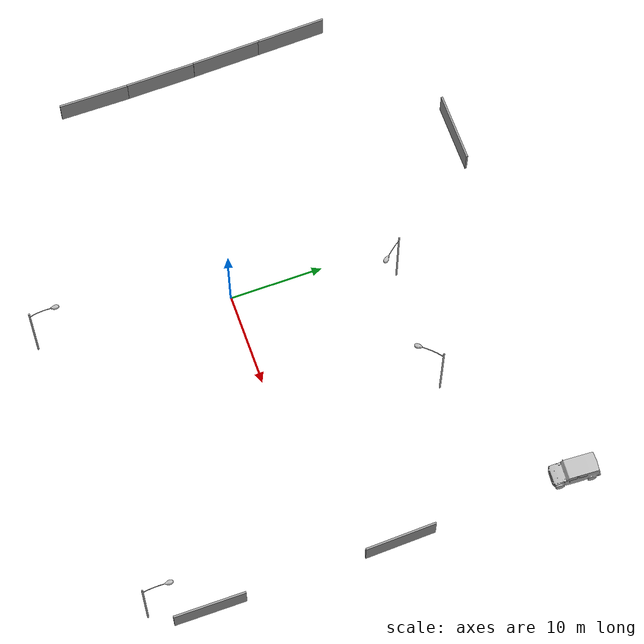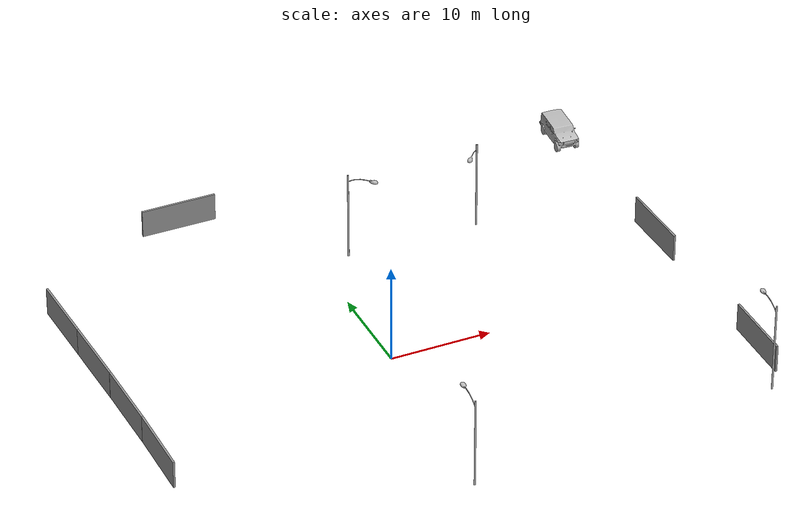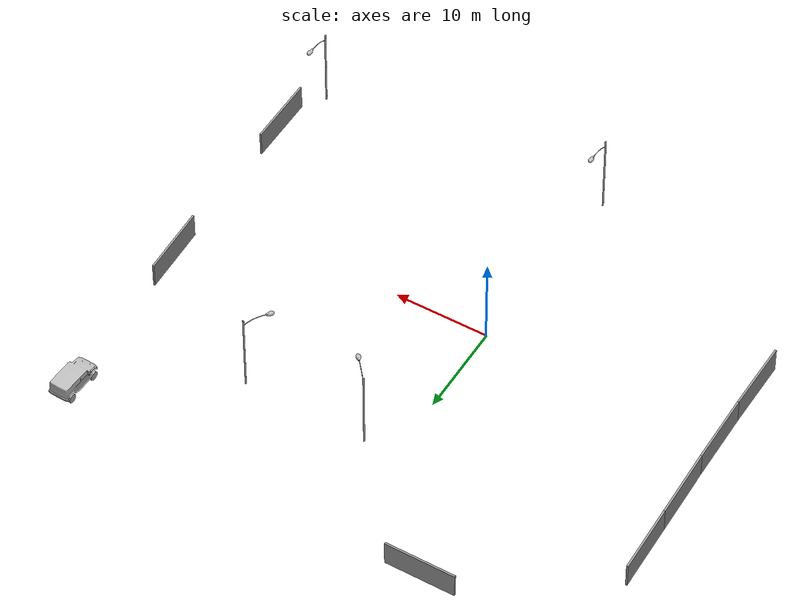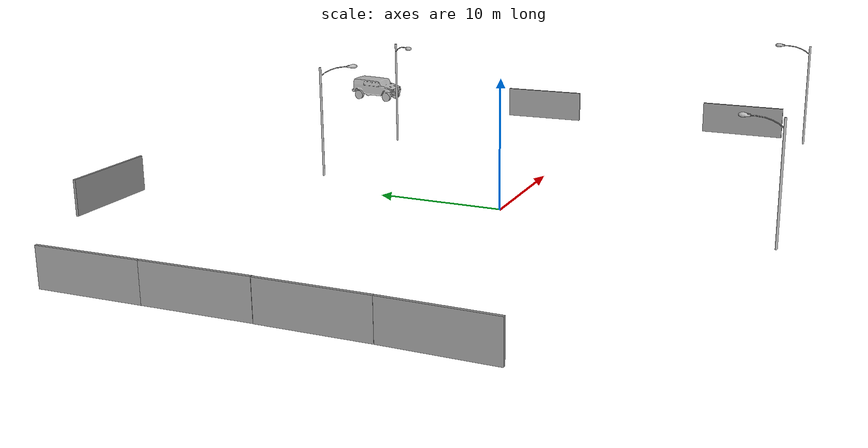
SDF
<sdf version="1.6">
 <world name="default">
  <light name="sun" type="directional">
   <pose>0 0 10 0 -0 0</pose>
   <diffuse>0.8 0.8 0.8 1</diffuse>
   <specular>0.2 0.2 0.2 1</specular>
   <attenuation>
    <range>1000</range>
    <constant>0.9</constant>
    <linear>0.01</linear>
    <quadratic>0.001</quadratic>
   </attenuation>
   <direction>-0.5 0.1 -0.9</direction>
  </light>
  <physics name="default_physics" default="0" type="ode">
   <ode>
    <solver>
     <type>quick</type>
     <iters>10</iters>
     <sor>1.3</sor>
     <use_dynamic_moi_rescaling>0</use_dynamic_moi_rescaling>
    </solver>
    <constraints>
     <cfm>0</cfm>
     <erp>0.2</erp>
     <contact_max_correcting_vel>100</contact_max_correcting_vel>
     <contact_surface_layer>0.001</contact_surface_layer>
    </constraints>
   </ode>
   <max_step_size>0.002</max_step_size>
   <real_time_factor>1</real_time_factor>
   <real_time_update_rate>500</real_time_update_rate>
  </physics>
  <gravity>0 0 -9.8066</gravity>
  <magnetic_field>6e-06 2.3e-05 -4.2e-05</magnetic_field>
  <atmosphere type="adiabatic"/>
  <scene><ambient>0.4 0.4 0.4 1</ambient><background>0.7 0.7 0.7 1</background><shadows>1</shadows></scene>
  <spherical_coordinates>
   <surface_model>EARTH_WGS84</surface_model>
   <latitude_deg>0</latitude_deg>
   <longitude_deg>0</longitude_deg>
   <elevation>0</elevation>
   <heading_deg>0</heading_deg>
  </spherical_coordinates>
  <model name="grey_wall_clone">
   <static>1</static>
   <link name="link">
    <pose>0 0 1.4 0 -0 0</pose>
    <collision name="collision"><geometry><box><size>7.5 0.2 2.8</size></box></geometry></collision>
    <visual name="visual">
     <cast_shadows>0</cast_shadows>
     <geometry><box><size>7.5 0.2 2.8</size></box></geometry>
     <material>
      <script>
       <uri>model://grey_wall/materials/scripts</uri>
       <uri>model://grey_wall/materials/textures</uri>
       <name>vrc/grey_wall</name>
      </script>
     </material>
    </visual>
   </link>
   <pose>-9.61178 28.3547 0 0 -0 0</pose>
  </model>
  <model name="Lamp Post">
   <static>1</static>
   <link name="link">
    <collision name="collision">
     <geometry><mesh><uri>model://lamp_post/meshes/lamp_post.dae</uri><scale>3 3 3</scale></mesh></geometry>
    </collision>
    <visual name="visual">
     <geometry><mesh><uri>model://lamp_post/meshes/lamp_post.dae</uri><scale>3 3 3</scale></mesh></geometry>
    </visual>
   </link>
   <pose>29.6414 -18.6777 0 0 -0 3.11003</pose>
  </model>
  <model name="suv">
   <static>1</static>
   <link name="link">
    <collision name="collision">
     <pose>0 0 0 0 0 -1.5708</pose>
     <geometry><mesh><scale>0.06 0.06 0.06</scale><uri>model://suv/meshes/suv.obj</uri></mesh></geometry>
    </collision>
    <visual name="visual">
     <pose>0 0 0 0 0 -1.5708</pose>
     <geometry><mesh><scale>0.06 0.06 0.06</scale><uri>model://suv/meshes/suv.obj</uri></mesh></geometry>
    </visual>
   </link>
   <pose>30.0156 26.1706 0.717401 0 0 -1.62911</pose>
  </model>
  <model name="Lamp Post_clone">
   <static>1</static>
   <link name="link">
    <collision name="collision">
     <geometry><mesh><uri>model://lamp_post/meshes/lamp_post.dae</uri><scale>3 3 3</scale></mesh></geometry>
    </collision>
    <visual name="visual">
     <geometry><mesh><uri>model://lamp_post/meshes/lamp_post.dae</uri><scale>3 3 3</scale></mesh></geometry>
    </visual>
   </link>
   <pose>-1.22228 -20.4974 0 0 -0 3.11003</pose>
  </model>
  <model name="Lamp Post_clone_0">
   <static>1</static>
   <link name="link">
    <collision name="collision">
     <geometry><mesh><uri>model://lamp_post/meshes/lamp_post.dae</uri><scale>3 3 3</scale></mesh></geometry>
    </collision>
    <visual name="visual">
     <geometry><mesh><uri>model://lamp_post/meshes/lamp_post.dae</uri><scale>3 3 3</scale></mesh></geometry>
    </visual>
   </link>
   <pose>3.27509 17.1047 0 0 -0 0.723389</pose>
  </model>
  <model name="Lamp Post_clone_1">
   <static>1</static>
   <link name="link">
    <collision name="collision">
     <geometry><mesh><uri>model://lamp_post/meshes/lamp_post.dae</uri><scale>3 3 3</scale></mesh></geometry>
    </collision>
    <visual name="visual">
     <geometry><mesh><uri>model://lamp_post/meshes/lamp_post.dae</uri><scale>3 3 3</scale></mesh></geometry>
    </visual>
   </link>
   <pose>16.5869 16.8983 0 0 0 -0.678037</pose>
  </model>
  <model name="grey_wall_clone_0">
   <static>1</static>
   <link name="link">
    <pose>0 0 1.4 0 -0 0</pose>
    <collision name="collision"><geometry><box><size>7.5 0.2 2.8</size></box></geometry></collision>
    <visual name="visual">
     <cast_shadows>0</cast_shadows>
     <geometry><box><size>7.5 0.2 2.8</size></box></geometry>
     <material>
      <script>
       <uri>model://grey_wall/materials/scripts</uri>
       <uri>model://grey_wall/materials/textures</uri>
       <name>vrc/grey_wall</name>
      </script>
     </material>
    </visual>
   </link>
   <pose>31.2602 -12.74 0 0 -0 1.57068</pose>
  </model>
  <model name="grey_wall_clone_1">
   <static>1</static>
   <link name="link">
    <pose>0 0 1.4 0 -0 0</pose>
    <collision name="collision"><geometry><box><size>7.5 0.2 2.8</size></box></geometry></collision>
    <visual name="visual">
     <cast_shadows>0</cast_shadows>
     <geometry><box><size>7.5 0.2 2.8</size></box></geometry>
     <material>
      <script>
       <uri>model://grey_wall/materials/scripts</uri>
       <uri>model://grey_wall/materials/textures</uri>
       <name>vrc/grey_wall</name>
      </script>
     </material>
    </visual>
   </link>
   <pose>30.9669 7.26715 0 0 -0 1.60284</pose>
  </model>
  <model name="grey_wall_clone_1_clone">
   <static>1</static>
   <link name="link">
    <pose>0 0 1.4 0 -0 0</pose>
    <collision name="collision"><geometry><box><size>7.5 0.2 2.8</size></box></geometry></collision>
    <visual name="visual">
     <cast_shadows>0</cast_shadows>
     <geometry><box><size>7.5 0.2 2.8</size></box></geometry>
     <material>
      <script>
       <uri>model://grey_wall/materials/scripts</uri>
       <uri>model://grey_wall/materials/textures</uri>
       <name>vrc/grey_wall</name>
      </script>
     </material>
    </visual>
   </link>
   <pose>-25.7177 -6.56793 0.36189 0 -0 1.56883</pose>
  </model>
  <model name="grey_wall_clone_1_clone_0">
   <static>1</static>
   <link name="link">
    <pose>0 0 1.4 0 -0 0</pose>
    <collision name="collision"><geometry><box><size>7.5 0.2 2.8</size></box></geometry></collision>
    <visual name="visual">
     <cast_shadows>0</cast_shadows>
     <geometry><box><size>7.5 0.2 2.8</size></box></geometry>
     <material>
      <script>
       <uri>model://grey_wall/materials/scripts</uri>
       <uri>model://grey_wall/materials/textures</uri>
       <name>vrc/grey_wall</name>
      </script>
     </material>
    </visual>
   </link>
   <pose>-25.7877 0.884819 0.36545 0 -0 1.58925</pose>
  </model>
  <model name="grey_wall_clone_1_clone_1">
   <static>1</static>
   <link name="link">
    <pose>0 0 1.4 0 -0 0</pose>
    <collision name="collision"><geometry><box><size>7.5 0.2 2.8</size></box></geometry></collision>
    <visual name="visual">
     <cast_shadows>0</cast_shadows>
     <geometry><box><size>7.5 0.2 2.8</size></box></geometry>
     <material>
      <script>
       <uri>model://grey_wall/materials/scripts</uri>
       <uri>model://grey_wall/materials/textures</uri>
       <name>vrc/grey_wall</name>
      </script>
     </material>
    </visual>
   </link>
   <pose>-25.989 8.39137 0.38517 0 -0 1.60284</pose>
  </model>
  <model name="grey_wall_clone_1_clone_2">
   <static>1</static>
   <link name="link">
    <pose>0 0 1.4 0 -0 0</pose>
    <collision name="collision"><geometry><box><size>7.5 0.2 2.8</size></box></geometry></collision>
    <visual name="visual">
     <cast_shadows>0</cast_shadows>
     <geometry><box><size>7.5 0.2 2.8</size></box></geometry>
     <material>
      <script>
       <uri>model://grey_wall/materials/scripts</uri>
       <uri>model://grey_wall/materials/textures</uri>
       <name>vrc/grey_wall</name>
      </script>
     </material>
    </visual>
   </link>
   <pose>-26.2235 15.7646 0.38187 0 -0 1.60284</pose>
  </model>
 </world>
</sdf>
